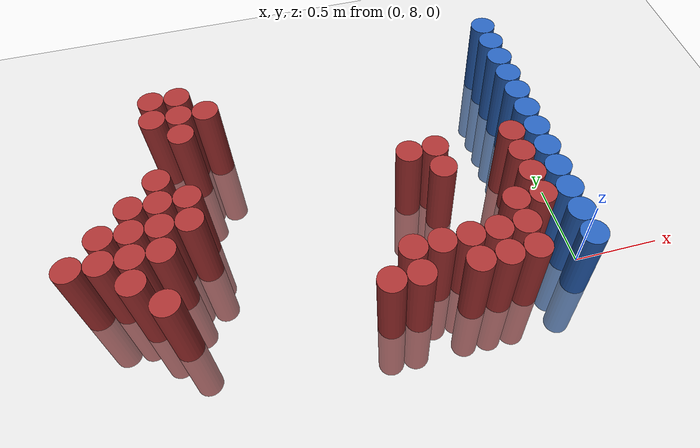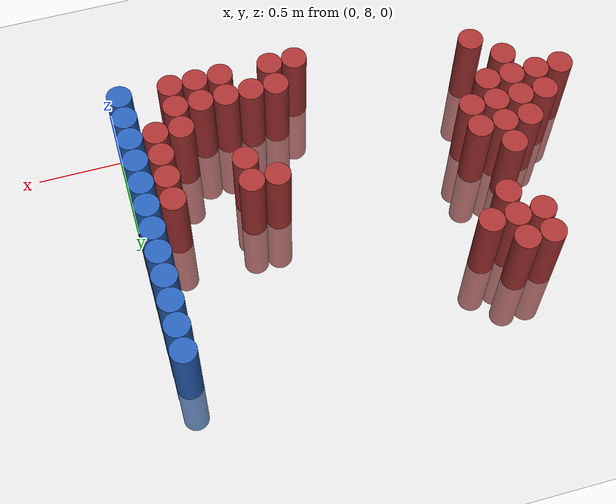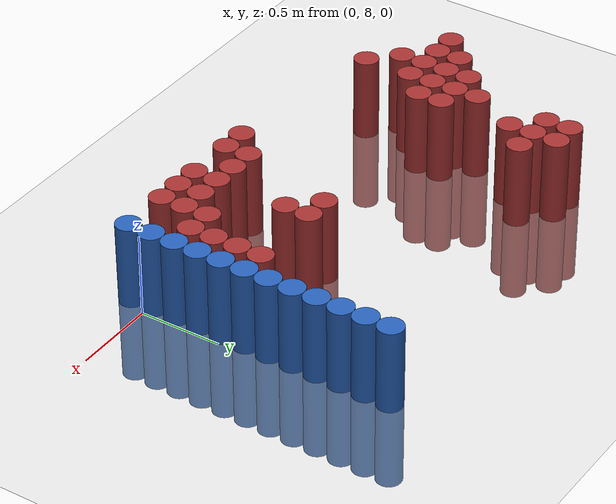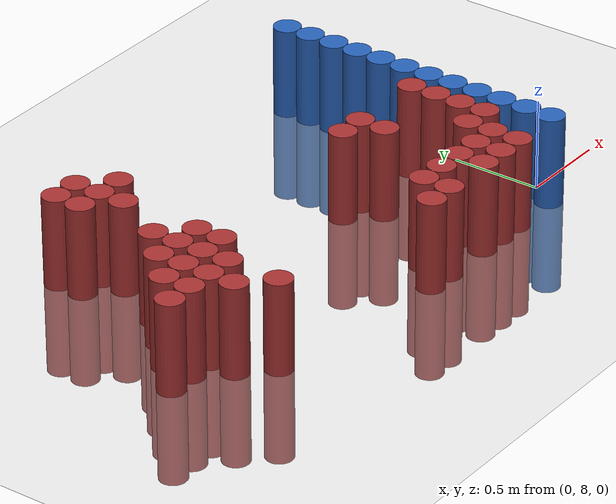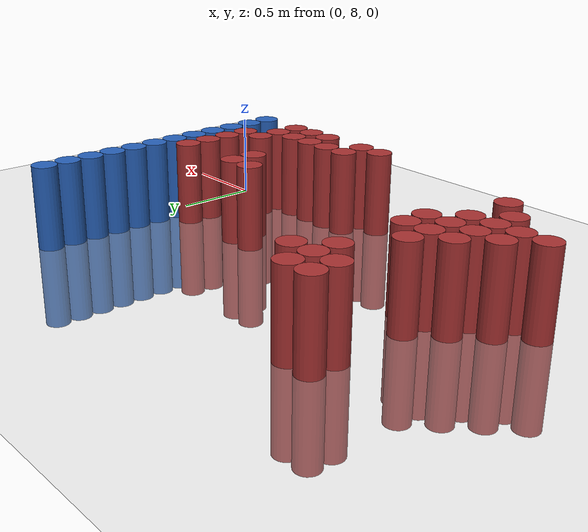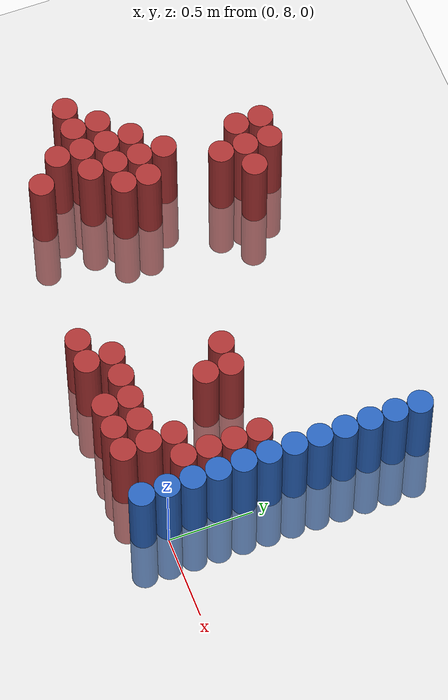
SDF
<sdf version="1.6">
 <world name="default">
  <model name="ground_plane">
   <static>1</static>
   <link name="link">
    <collision name="collision">
     <geometry><plane><normal>0 0 1</normal><size>100 100</size></plane></geometry>
     <surface><friction><ode><mu>100</mu><mu2>50</mu2></ode></friction></surface>
    </collision>
    <visual name="visual">
     <cast_shadows>0</cast_shadows>
     <geometry><plane><normal>0 0 1</normal><size>100 100</size></plane></geometry>
     <material>
      <script><uri>file://media/materials/scripts/gazebo.material</uri><name>Gazebo/Grey</name></script>
     </material>
    </visual>
   </link>
  </model>
  <model name="unit_cylinder_229">
   <static>1</static>
   <pose>-2.625000 8.325000 0.000000 0.000000 0.000000 0.000000</pose>
   <link name="link">
    <inertial>
     <mass>1</mass>
     <inertia><ixx>0.145833</ixx><ixy>0</ixy><ixz>0</ixz><iyy>0.145833</iyy><iyz>0</iyz><izz>0.125</izz></inertia>
    </inertial>
    <collision name="collision">
     <geometry><cylinder><radius>0.075000</radius><length>1</length></cylinder></geometry>
    </collision>
    <visual name="visual">
     <geometry><cylinder><radius>0.075000</radius><length>1</length></cylinder></geometry>
     <material>
      <ambient>0.648000 0.192000 0.192000 1</ambient>
      <diffuse>0.648000 0.192000 0.192000 1</diffuse>
     </material>
     <material>
      <script><name>Gazebo/Grey</name><uri>file://media/materials/scripts/gazebo.material</uri></script>
     </material>
    </visual>
   </link>
  </model>
  <model name="unit_cylinder_237">
   <static>1</static>
   <pose>-2.475000 8.325000 0.000000 0.000000 0.000000 0.000000</pose>
   <link name="link">
    <inertial>
     <mass>1</mass>
     <inertia><ixx>0.145833</ixx><ixy>0</ixy><ixz>0</ixz><iyy>0.145833</iyy><iyz>0</iyz><izz>0.125</izz></inertia>
    </inertial>
    <collision name="collision">
     <geometry><cylinder><radius>0.075000</radius><length>1</length></cylinder></geometry>
    </collision>
    <visual name="visual">
     <geometry><cylinder><radius>0.075000</radius><length>1</length></cylinder></geometry>
     <material>
      <ambient>0.648000 0.192000 0.192000 1</ambient>
      <diffuse>0.648000 0.192000 0.192000 1</diffuse>
     </material>
     <material>
      <script><name>Gazebo/Grey</name><uri>file://media/materials/scripts/gazebo.material</uri></script>
     </material>
    </visual>
   </link>
  </model>
  <model name="unit_cylinder_238">
   <static>1</static>
   <pose>-2.475000 8.475000 0.000000 0.000000 0.000000 0.000000</pose>
   <link name="link">
    <inertial>
     <mass>1</mass>
     <inertia><ixx>0.145833</ixx><ixy>0</ixy><ixz>0</ixz><iyy>0.145833</iyy><iyz>0</iyz><izz>0.125</izz></inertia>
    </inertial>
    <collision name="collision">
     <geometry><cylinder><radius>0.075000</radius><length>1</length></cylinder></geometry>
    </collision>
    <visual name="visual">
     <geometry><cylinder><radius>0.075000</radius><length>1</length></cylinder></geometry>
     <material>
      <ambient>0.648000 0.192000 0.192000 1</ambient>
      <diffuse>0.648000 0.192000 0.192000 1</diffuse>
     </material>
     <material>
      <script><name>Gazebo/Grey</name><uri>file://media/materials/scripts/gazebo.material</uri></script>
     </material>
    </visual>
   </link>
  </model>
  <model name="unit_cylinder_244">
   <static>1</static>
   <pose>-2.325000 8.175000 0.000000 0.000000 0.000000 0.000000</pose>
   <link name="link">
    <inertial>
     <mass>1</mass>
     <inertia><ixx>0.145833</ixx><ixy>0</ixy><ixz>0</ixz><iyy>0.145833</iyy><iyz>0</iyz><izz>0.125</izz></inertia>
    </inertial>
    <collision name="collision">
     <geometry><cylinder><radius>0.075000</radius><length>1</length></cylinder></geometry>
    </collision>
    <visual name="visual">
     <geometry><cylinder><radius>0.075000</radius><length>1</length></cylinder></geometry>
     <material>
      <ambient>0.648000 0.192000 0.192000 1</ambient>
      <diffuse>0.648000 0.192000 0.192000 1</diffuse>
     </material>
     <material>
      <script><name>Gazebo/Grey</name><uri>file://media/materials/scripts/gazebo.material</uri></script>
     </material>
    </visual>
   </link>
  </model>
  <model name="unit_cylinder_245">
   <static>1</static>
   <pose>-2.325000 8.325000 0.000000 0.000000 0.000000 0.000000</pose>
   <link name="link">
    <inertial>
     <mass>1</mass>
     <inertia><ixx>0.145833</ixx><ixy>0</ixy><ixz>0</ixz><iyy>0.145833</iyy><iyz>0</iyz><izz>0.125</izz></inertia>
    </inertial>
    <collision name="collision">
     <geometry><cylinder><radius>0.075000</radius><length>1</length></cylinder></geometry>
    </collision>
    <visual name="visual">
     <geometry><cylinder><radius>0.075000</radius><length>1</length></cylinder></geometry>
     <material>
      <ambient>0.648000 0.192000 0.192000 1</ambient>
      <diffuse>0.648000 0.192000 0.192000 1</diffuse>
     </material>
     <material>
      <script><name>Gazebo/Grey</name><uri>file://media/materials/scripts/gazebo.material</uri></script>
     </material>
    </visual>
   </link>
  </model>
  <model name="unit_cylinder_246">
   <static>1</static>
   <pose>-2.325000 8.475000 0.000000 0.000000 0.000000 0.000000</pose>
   <link name="link">
    <inertial>
     <mass>1</mass>
     <inertia><ixx>0.145833</ixx><ixy>0</ixy><ixz>0</ixz><iyy>0.145833</iyy><iyz>0</iyz><izz>0.125</izz></inertia>
    </inertial>
    <collision name="collision">
     <geometry><cylinder><radius>0.075000</radius><length>1</length></cylinder></geometry>
    </collision>
    <visual name="visual">
     <geometry><cylinder><radius>0.075000</radius><length>1</length></cylinder></geometry>
     <material>
      <ambient>0.648000 0.192000 0.192000 1</ambient>
      <diffuse>0.648000 0.192000 0.192000 1</diffuse>
     </material>
     <material>
      <script><name>Gazebo/Grey</name><uri>file://media/materials/scripts/gazebo.material</uri></script>
     </material>
    </visual>
   </link>
  </model>
  <model name="unit_cylinder_247">
   <static>1</static>
   <pose>-2.325000 8.625000 0.000000 0.000000 0.000000 0.000000</pose>
   <link name="link">
    <inertial>
     <mass>1</mass>
     <inertia><ixx>0.145833</ixx><ixy>0</ixy><ixz>0</ixz><iyy>0.145833</iyy><iyz>0</iyz><izz>0.125</izz></inertia>
    </inertial>
    <collision name="collision">
     <geometry><cylinder><radius>0.075000</radius><length>1</length></cylinder></geometry>
    </collision>
    <visual name="visual">
     <geometry><cylinder><radius>0.075000</radius><length>1</length></cylinder></geometry>
     <material>
      <ambient>0.648000 0.192000 0.192000 1</ambient>
      <diffuse>0.648000 0.192000 0.192000 1</diffuse>
     </material>
     <material>
      <script><name>Gazebo/Grey</name><uri>file://media/materials/scripts/gazebo.material</uri></script>
     </material>
    </visual>
   </link>
  </model>
  <model name="unit_cylinder_251">
   <static>1</static>
   <pose>-2.175000 8.025000 0.000000 0.000000 0.000000 0.000000</pose>
   <link name="link">
    <inertial>
     <mass>1</mass>
     <inertia><ixx>0.145833</ixx><ixy>0</ixy><ixz>0</ixz><iyy>0.145833</iyy><iyz>0</iyz><izz>0.125</izz></inertia>
    </inertial>
    <collision name="collision">
     <geometry><cylinder><radius>0.075000</radius><length>1</length></cylinder></geometry>
    </collision>
    <visual name="visual">
     <geometry><cylinder><radius>0.075000</radius><length>1</length></cylinder></geometry>
     <material>
      <ambient>0.648000 0.192000 0.192000 1</ambient>
      <diffuse>0.648000 0.192000 0.192000 1</diffuse>
     </material>
     <material>
      <script><name>Gazebo/Grey</name><uri>file://media/materials/scripts/gazebo.material</uri></script>
     </material>
    </visual>
   </link>
  </model>
  <model name="unit_cylinder_252">
   <static>1</static>
   <pose>-2.175000 8.325000 0.000000 0.000000 0.000000 0.000000</pose>
   <link name="link">
    <inertial>
     <mass>1</mass>
     <inertia><ixx>0.145833</ixx><ixy>0</ixy><ixz>0</ixz><iyy>0.145833</iyy><iyz>0</iyz><izz>0.125</izz></inertia>
    </inertial>
    <collision name="collision">
     <geometry><cylinder><radius>0.075000</radius><length>1</length></cylinder></geometry>
    </collision>
    <visual name="visual">
     <geometry><cylinder><radius>0.075000</radius><length>1</length></cylinder></geometry>
     <material>
      <ambient>0.648000 0.192000 0.192000 1</ambient>
      <diffuse>0.648000 0.192000 0.192000 1</diffuse>
     </material>
     <material>
      <script><name>Gazebo/Grey</name><uri>file://media/materials/scripts/gazebo.material</uri></script>
     </material>
    </visual>
   </link>
  </model>
  <model name="unit_cylinder_253">
   <static>1</static>
   <pose>-2.175000 8.475000 0.000000 0.000000 0.000000 0.000000</pose>
   <link name="link">
    <inertial>
     <mass>1</mass>
     <inertia><ixx>0.145833</ixx><ixy>0</ixy><ixz>0</ixz><iyy>0.145833</iyy><iyz>0</iyz><izz>0.125</izz></inertia>
    </inertial>
    <collision name="collision">
     <geometry><cylinder><radius>0.075000</radius><length>1</length></cylinder></geometry>
    </collision>
    <visual name="visual">
     <geometry><cylinder><radius>0.075000</radius><length>1</length></cylinder></geometry>
     <material>
      <ambient>0.648000 0.192000 0.192000 1</ambient>
      <diffuse>0.648000 0.192000 0.192000 1</diffuse>
     </material>
     <material>
      <script><name>Gazebo/Grey</name><uri>file://media/materials/scripts/gazebo.material</uri></script>
     </material>
    </visual>
   </link>
  </model>
  <model name="unit_cylinder_254">
   <static>1</static>
   <pose>-2.175000 8.625000 0.000000 0.000000 0.000000 0.000000</pose>
   <link name="link">
    <inertial>
     <mass>1</mass>
     <inertia><ixx>0.145833</ixx><ixy>0</ixy><ixz>0</ixz><iyy>0.145833</iyy><iyz>0</iyz><izz>0.125</izz></inertia>
    </inertial>
    <collision name="collision">
     <geometry><cylinder><radius>0.075000</radius><length>1</length></cylinder></geometry>
    </collision>
    <visual name="visual">
     <geometry><cylinder><radius>0.075000</radius><length>1</length></cylinder></geometry>
     <material>
      <ambient>0.648000 0.192000 0.192000 1</ambient>
      <diffuse>0.648000 0.192000 0.192000 1</diffuse>
     </material>
     <material>
      <script><name>Gazebo/Grey</name><uri>file://media/materials/scripts/gazebo.material</uri></script>
     </material>
    </visual>
   </link>
  </model>
  <model name="unit_cylinder_255">
   <static>1</static>
   <pose>-2.175000 8.775000 0.000000 0.000000 0.000000 0.000000</pose>
   <link name="link">
    <inertial>
     <mass>1</mass>
     <inertia><ixx>0.145833</ixx><ixy>0</ixy><ixz>0</ixz><iyy>0.145833</iyy><iyz>0</iyz><izz>0.125</izz></inertia>
    </inertial>
    <collision name="collision">
     <geometry><cylinder><radius>0.075000</radius><length>1</length></cylinder></geometry>
    </collision>
    <visual name="visual">
     <geometry><cylinder><radius>0.075000</radius><length>1</length></cylinder></geometry>
     <material>
      <ambient>0.648000 0.192000 0.192000 1</ambient>
      <diffuse>0.648000 0.192000 0.192000 1</diffuse>
     </material>
     <material>
      <script><name>Gazebo/Grey</name><uri>file://media/materials/scripts/gazebo.material</uri></script>
     </material>
    </visual>
   </link>
  </model>
  <model name="unit_cylinder_256">
   <static>1</static>
   <pose>-2.175000 9.225000 0.000000 0.000000 0.000000 0.000000</pose>
   <link name="link">
    <inertial>
     <mass>1</mass>
     <inertia><ixx>0.145833</ixx><ixy>0</ixy><ixz>0</ixz><iyy>0.145833</iyy><iyz>0</iyz><izz>0.125</izz></inertia>
    </inertial>
    <collision name="collision">
     <geometry><cylinder><radius>0.075000</radius><length>1</length></cylinder></geometry>
    </collision>
    <visual name="visual">
     <geometry><cylinder><radius>0.075000</radius><length>1</length></cylinder></geometry>
     <material>
      <ambient>0.648000 0.192000 0.192000 1</ambient>
      <diffuse>0.648000 0.192000 0.192000 1</diffuse>
     </material>
     <material>
      <script><name>Gazebo/Grey</name><uri>file://media/materials/scripts/gazebo.material</uri></script>
     </material>
    </visual>
   </link>
  </model>
  <model name="unit_cylinder_257">
   <static>1</static>
   <pose>-2.175000 9.375000 0.000000 0.000000 0.000000 0.000000</pose>
   <link name="link">
    <inertial>
     <mass>1</mass>
     <inertia><ixx>0.145833</ixx><ixy>0</ixy><ixz>0</ixz><iyy>0.145833</iyy><iyz>0</iyz><izz>0.125</izz></inertia>
    </inertial>
    <collision name="collision">
     <geometry><cylinder><radius>0.075000</radius><length>1</length></cylinder></geometry>
    </collision>
    <visual name="visual">
     <geometry><cylinder><radius>0.075000</radius><length>1</length></cylinder></geometry>
     <material>
      <ambient>0.648000 0.192000 0.192000 1</ambient>
      <diffuse>0.648000 0.192000 0.192000 1</diffuse>
     </material>
     <material>
      <script><name>Gazebo/Grey</name><uri>file://media/materials/scripts/gazebo.material</uri></script>
     </material>
    </visual>
   </link>
  </model>
  <model name="unit_cylinder_258">
   <static>1</static>
   <pose>-2.025000 8.475000 0.000000 0.000000 0.000000 0.000000</pose>
   <link name="link">
    <inertial>
     <mass>1</mass>
     <inertia><ixx>0.145833</ixx><ixy>0</ixy><ixz>0</ixz><iyy>0.145833</iyy><iyz>0</iyz><izz>0.125</izz></inertia>
    </inertial>
    <collision name="collision">
     <geometry><cylinder><radius>0.075000</radius><length>1</length></cylinder></geometry>
    </collision>
    <visual name="visual">
     <geometry><cylinder><radius>0.075000</radius><length>1</length></cylinder></geometry>
     <material>
      <ambient>0.648000 0.192000 0.192000 1</ambient>
      <diffuse>0.648000 0.192000 0.192000 1</diffuse>
     </material>
     <material>
      <script><name>Gazebo/Grey</name><uri>file://media/materials/scripts/gazebo.material</uri></script>
     </material>
    </visual>
   </link>
  </model>
  <model name="unit_cylinder_259">
   <static>1</static>
   <pose>-2.025000 8.625000 0.000000 0.000000 0.000000 0.000000</pose>
   <link name="link">
    <inertial>
     <mass>1</mass>
     <inertia><ixx>0.145833</ixx><ixy>0</ixy><ixz>0</ixz><iyy>0.145833</iyy><iyz>0</iyz><izz>0.125</izz></inertia>
    </inertial>
    <collision name="collision">
     <geometry><cylinder><radius>0.075000</radius><length>1</length></cylinder></geometry>
    </collision>
    <visual name="visual">
     <geometry><cylinder><radius>0.075000</radius><length>1</length></cylinder></geometry>
     <material>
      <ambient>0.648000 0.192000 0.192000 1</ambient>
      <diffuse>0.648000 0.192000 0.192000 1</diffuse>
     </material>
     <material>
      <script><name>Gazebo/Grey</name><uri>file://media/materials/scripts/gazebo.material</uri></script>
     </material>
    </visual>
   </link>
  </model>
  <model name="unit_cylinder_260">
   <static>1</static>
   <pose>-2.025000 9.075000 0.000000 0.000000 0.000000 0.000000</pose>
   <link name="link">
    <inertial>
     <mass>1</mass>
     <inertia><ixx>0.145833</ixx><ixy>0</ixy><ixz>0</ixz><iyy>0.145833</iyy><iyz>0</iyz><izz>0.125</izz></inertia>
    </inertial>
    <collision name="collision">
     <geometry><cylinder><radius>0.075000</radius><length>1</length></cylinder></geometry>
    </collision>
    <visual name="visual">
     <geometry><cylinder><radius>0.075000</radius><length>1</length></cylinder></geometry>
     <material>
      <ambient>0.648000 0.192000 0.192000 1</ambient>
      <diffuse>0.648000 0.192000 0.192000 1</diffuse>
     </material>
     <material>
      <script><name>Gazebo/Grey</name><uri>file://media/materials/scripts/gazebo.material</uri></script>
     </material>
    </visual>
   </link>
  </model>
  <model name="unit_cylinder_261">
   <static>1</static>
   <pose>-2.025000 9.225000 0.000000 0.000000 0.000000 0.000000</pose>
   <link name="link">
    <inertial>
     <mass>1</mass>
     <inertia><ixx>0.145833</ixx><ixy>0</ixy><ixz>0</ixz><iyy>0.145833</iyy><iyz>0</iyz><izz>0.125</izz></inertia>
    </inertial>
    <collision name="collision">
     <geometry><cylinder><radius>0.075000</radius><length>1</length></cylinder></geometry>
    </collision>
    <visual name="visual">
     <geometry><cylinder><radius>0.075000</radius><length>1</length></cylinder></geometry>
     <material>
      <ambient>0.648000 0.192000 0.192000 1</ambient>
      <diffuse>0.648000 0.192000 0.192000 1</diffuse>
     </material>
     <material>
      <script><name>Gazebo/Grey</name><uri>file://media/materials/scripts/gazebo.material</uri></script>
     </material>
    </visual>
   </link>
  </model>
  <model name="unit_cylinder_262">
   <static>1</static>
   <pose>-2.025000 9.375000 0.000000 0.000000 0.000000 0.000000</pose>
   <link name="link">
    <inertial>
     <mass>1</mass>
     <inertia><ixx>0.145833</ixx><ixy>0</ixy><ixz>0</ixz><iyy>0.145833</iyy><iyz>0</iyz><izz>0.125</izz></inertia>
    </inertial>
    <collision name="collision">
     <geometry><cylinder><radius>0.075000</radius><length>1</length></cylinder></geometry>
    </collision>
    <visual name="visual">
     <geometry><cylinder><radius>0.075000</radius><length>1</length></cylinder></geometry>
     <material>
      <ambient>0.648000 0.192000 0.192000 1</ambient>
      <diffuse>0.648000 0.192000 0.192000 1</diffuse>
     </material>
     <material>
      <script><name>Gazebo/Grey</name><uri>file://media/materials/scripts/gazebo.material</uri></script>
     </material>
    </visual>
   </link>
  </model>
  <model name="unit_cylinder_263">
   <static>1</static>
   <pose>-1.875000 9.225000 0.000000 0.000000 0.000000 0.000000</pose>
   <link name="link">
    <inertial>
     <mass>1</mass>
     <inertia><ixx>0.145833</ixx><ixy>0</ixy><ixz>0</ixz><iyy>0.145833</iyy><iyz>0</iyz><izz>0.125</izz></inertia>
    </inertial>
    <collision name="collision">
     <geometry><cylinder><radius>0.075000</radius><length>1</length></cylinder></geometry>
    </collision>
    <visual name="visual">
     <geometry><cylinder><radius>0.075000</radius><length>1</length></cylinder></geometry>
     <material>
      <ambient>0.648000 0.192000 0.192000 1</ambient>
      <diffuse>0.648000 0.192000 0.192000 1</diffuse>
     </material>
     <material>
      <script><name>Gazebo/Grey</name><uri>file://media/materials/scripts/gazebo.material</uri></script>
     </material>
    </visual>
   </link>
  </model>
  <model name="unit_cylinder_269">
   <static>1</static>
   <pose>-1.125000 7.875000 0.000000 0.000000 0.000000 0.000000</pose>
   <link name="link">
    <inertial>
     <mass>1</mass>
     <inertia><ixx>0.145833</ixx><ixy>0</ixy><ixz>0</ixz><iyy>0.145833</iyy><iyz>0</iyz><izz>0.125</izz></inertia>
    </inertial>
    <collision name="collision">
     <geometry><cylinder><radius>0.075000</radius><length>1</length></cylinder></geometry>
    </collision>
    <visual name="visual">
     <geometry><cylinder><radius>0.075000</radius><length>1</length></cylinder></geometry>
     <material>
      <ambient>0.648000 0.192000 0.192000 1</ambient>
      <diffuse>0.648000 0.192000 0.192000 1</diffuse>
     </material>
     <material>
      <script><name>Gazebo/Grey</name><uri>file://media/materials/scripts/gazebo.material</uri></script>
     </material>
    </visual>
   </link>
  </model>
  <model name="unit_cylinder_273">
   <static>1</static>
   <pose>-0.975000 7.875000 0.000000 0.000000 0.000000 0.000000</pose>
   <link name="link">
    <inertial>
     <mass>1</mass>
     <inertia><ixx>0.145833</ixx><ixy>0</ixy><ixz>0</ixz><iyy>0.145833</iyy><iyz>0</iyz><izz>0.125</izz></inertia>
    </inertial>
    <collision name="collision">
     <geometry><cylinder><radius>0.075000</radius><length>1</length></cylinder></geometry>
    </collision>
    <visual name="visual">
     <geometry><cylinder><radius>0.075000</radius><length>1</length></cylinder></geometry>
     <material>
      <ambient>0.648000 0.192000 0.192000 1</ambient>
      <diffuse>0.648000 0.192000 0.192000 1</diffuse>
     </material>
     <material>
      <script><name>Gazebo/Grey</name><uri>file://media/materials/scripts/gazebo.material</uri></script>
     </material>
    </visual>
   </link>
  </model>
  <model name="unit_cylinder_274">
   <static>1</static>
   <pose>-0.975000 8.025000 0.000000 0.000000 0.000000 0.000000</pose>
   <link name="link">
    <inertial>
     <mass>1</mass>
     <inertia><ixx>0.145833</ixx><ixy>0</ixy><ixz>0</ixz><iyy>0.145833</iyy><iyz>0</iyz><izz>0.125</izz></inertia>
    </inertial>
    <collision name="collision">
     <geometry><cylinder><radius>0.075000</radius><length>1</length></cylinder></geometry>
    </collision>
    <visual name="visual">
     <geometry><cylinder><radius>0.075000</radius><length>1</length></cylinder></geometry>
     <material>
      <ambient>0.648000 0.192000 0.192000 1</ambient>
      <diffuse>0.648000 0.192000 0.192000 1</diffuse>
     </material>
     <material>
      <script><name>Gazebo/Grey</name><uri>file://media/materials/scripts/gazebo.material</uri></script>
     </material>
    </visual>
   </link>
  </model>
  <model name="unit_cylinder_279">
   <static>1</static>
   <pose>-0.825000 8.025000 0.000000 0.000000 0.000000 0.000000</pose>
   <link name="link">
    <inertial>
     <mass>1</mass>
     <inertia><ixx>0.145833</ixx><ixy>0</ixy><ixz>0</ixz><iyy>0.145833</iyy><iyz>0</iyz><izz>0.125</izz></inertia>
    </inertial>
    <collision name="collision">
     <geometry><cylinder><radius>0.075000</radius><length>1</length></cylinder></geometry>
    </collision>
    <visual name="visual">
     <geometry><cylinder><radius>0.075000</radius><length>1</length></cylinder></geometry>
     <material>
      <ambient>0.648000 0.192000 0.192000 1</ambient>
      <diffuse>0.648000 0.192000 0.192000 1</diffuse>
     </material>
     <material>
      <script><name>Gazebo/Grey</name><uri>file://media/materials/scripts/gazebo.material</uri></script>
     </material>
    </visual>
   </link>
  </model>
  <model name="unit_cylinder_280">
   <static>1</static>
   <pose>-0.825000 8.625000 0.000000 0.000000 0.000000 0.000000</pose>
   <link name="link">
    <inertial>
     <mass>1</mass>
     <inertia><ixx>0.145833</ixx><ixy>0</ixy><ixz>0</ixz><iyy>0.145833</iyy><iyz>0</iyz><izz>0.125</izz></inertia>
    </inertial>
    <collision name="collision">
     <geometry><cylinder><radius>0.075000</radius><length>1</length></cylinder></geometry>
    </collision>
    <visual name="visual">
     <geometry><cylinder><radius>0.075000</radius><length>1</length></cylinder></geometry>
     <material>
      <ambient>0.648000 0.192000 0.192000 1</ambient>
      <diffuse>0.648000 0.192000 0.192000 1</diffuse>
     </material>
     <material>
      <script><name>Gazebo/Grey</name><uri>file://media/materials/scripts/gazebo.material</uri></script>
     </material>
    </visual>
   </link>
  </model>
  <model name="unit_cylinder_284">
   <static>1</static>
   <pose>-0.675000 7.875000 0.000000 0.000000 0.000000 0.000000</pose>
   <link name="link">
    <inertial>
     <mass>1</mass>
     <inertia><ixx>0.145833</ixx><ixy>0</ixy><ixz>0</ixz><iyy>0.145833</iyy><iyz>0</iyz><izz>0.125</izz></inertia>
    </inertial>
    <collision name="collision">
     <geometry><cylinder><radius>0.075000</radius><length>1</length></cylinder></geometry>
    </collision>
    <visual name="visual">
     <geometry><cylinder><radius>0.075000</radius><length>1</length></cylinder></geometry>
     <material>
      <ambient>0.648000 0.192000 0.192000 1</ambient>
      <diffuse>0.648000 0.192000 0.192000 1</diffuse>
     </material>
     <material>
      <script><name>Gazebo/Grey</name><uri>file://media/materials/scripts/gazebo.material</uri></script>
     </material>
    </visual>
   </link>
  </model>
  <model name="unit_cylinder_285">
   <static>1</static>
   <pose>-0.675000 8.025000 0.000000 0.000000 0.000000 0.000000</pose>
   <link name="link">
    <inertial>
     <mass>1</mass>
     <inertia><ixx>0.145833</ixx><ixy>0</ixy><ixz>0</ixz><iyy>0.145833</iyy><iyz>0</iyz><izz>0.125</izz></inertia>
    </inertial>
    <collision name="collision">
     <geometry><cylinder><radius>0.075000</radius><length>1</length></cylinder></geometry>
    </collision>
    <visual name="visual">
     <geometry><cylinder><radius>0.075000</radius><length>1</length></cylinder></geometry>
     <material>
      <ambient>0.648000 0.192000 0.192000 1</ambient>
      <diffuse>0.648000 0.192000 0.192000 1</diffuse>
     </material>
     <material>
      <script><name>Gazebo/Grey</name><uri>file://media/materials/scripts/gazebo.material</uri></script>
     </material>
    </visual>
   </link>
  </model>
  <model name="unit_cylinder_286">
   <static>1</static>
   <pose>-0.675000 8.475000 0.000000 0.000000 0.000000 0.000000</pose>
   <link name="link">
    <inertial>
     <mass>1</mass>
     <inertia><ixx>0.145833</ixx><ixy>0</ixy><ixz>0</ixz><iyy>0.145833</iyy><iyz>0</iyz><izz>0.125</izz></inertia>
    </inertial>
    <collision name="collision">
     <geometry><cylinder><radius>0.075000</radius><length>1</length></cylinder></geometry>
    </collision>
    <visual name="visual">
     <geometry><cylinder><radius>0.075000</radius><length>1</length></cylinder></geometry>
     <material>
      <ambient>0.648000 0.192000 0.192000 1</ambient>
      <diffuse>0.648000 0.192000 0.192000 1</diffuse>
     </material>
     <material>
      <script><name>Gazebo/Grey</name><uri>file://media/materials/scripts/gazebo.material</uri></script>
     </material>
    </visual>
   </link>
  </model>
  <model name="unit_cylinder_287">
   <static>1</static>
   <pose>-0.675000 8.625000 0.000000 0.000000 0.000000 0.000000</pose>
   <link name="link">
    <inertial>
     <mass>1</mass>
     <inertia><ixx>0.145833</ixx><ixy>0</ixy><ixz>0</ixz><iyy>0.145833</iyy><iyz>0</iyz><izz>0.125</izz></inertia>
    </inertial>
    <collision name="collision">
     <geometry><cylinder><radius>0.075000</radius><length>1</length></cylinder></geometry>
    </collision>
    <visual name="visual">
     <geometry><cylinder><radius>0.075000</radius><length>1</length></cylinder></geometry>
     <material>
      <ambient>0.648000 0.192000 0.192000 1</ambient>
      <diffuse>0.648000 0.192000 0.192000 1</diffuse>
     </material>
     <material>
      <script><name>Gazebo/Grey</name><uri>file://media/materials/scripts/gazebo.material</uri></script>
     </material>
    </visual>
   </link>
  </model>
  <model name="unit_cylinder_291">
   <static>1</static>
   <pose>-0.525000 7.875000 0.000000 0.000000 0.000000 0.000000</pose>
   <link name="link">
    <inertial>
     <mass>1</mass>
     <inertia><ixx>0.145833</ixx><ixy>0</ixy><ixz>0</ixz><iyy>0.145833</iyy><iyz>0</iyz><izz>0.125</izz></inertia>
    </inertial>
    <collision name="collision">
     <geometry><cylinder><radius>0.075000</radius><length>1</length></cylinder></geometry>
    </collision>
    <visual name="visual">
     <geometry><cylinder><radius>0.075000</radius><length>1</length></cylinder></geometry>
     <material>
      <ambient>0.648000 0.192000 0.192000 1</ambient>
      <diffuse>0.648000 0.192000 0.192000 1</diffuse>
     </material>
     <material>
      <script><name>Gazebo/Grey</name><uri>file://media/materials/scripts/gazebo.material</uri></script>
     </material>
    </visual>
   </link>
  </model>
  <model name="unit_cylinder_292">
   <static>1</static>
   <pose>-0.525000 8.025000 0.000000 0.000000 0.000000 0.000000</pose>
   <link name="link">
    <inertial>
     <mass>1</mass>
     <inertia><ixx>0.145833</ixx><ixy>0</ixy><ixz>0</ixz><iyy>0.145833</iyy><iyz>0</iyz><izz>0.125</izz></inertia>
    </inertial>
    <collision name="collision">
     <geometry><cylinder><radius>0.075000</radius><length>1</length></cylinder></geometry>
    </collision>
    <visual name="visual">
     <geometry><cylinder><radius>0.075000</radius><length>1</length></cylinder></geometry>
     <material>
      <ambient>0.648000 0.192000 0.192000 1</ambient>
      <diffuse>0.648000 0.192000 0.192000 1</diffuse>
     </material>
     <material>
      <script><name>Gazebo/Grey</name><uri>file://media/materials/scripts/gazebo.material</uri></script>
     </material>
    </visual>
   </link>
  </model>
  <model name="unit_cylinder_301">
   <static>1</static>
   <pose>-0.375000 7.875000 0.000000 0.000000 0.000000 0.000000</pose>
   <link name="link">
    <inertial>
     <mass>1</mass>
     <inertia><ixx>0.145833</ixx><ixy>0</ixy><ixz>0</ixz><iyy>0.145833</iyy><iyz>0</iyz><izz>0.125</izz></inertia>
    </inertial>
    <collision name="collision">
     <geometry><cylinder><radius>0.075000</radius><length>1</length></cylinder></geometry>
    </collision>
    <visual name="visual">
     <geometry><cylinder><radius>0.075000</radius><length>1</length></cylinder></geometry>
     <material>
      <ambient>0.648000 0.192000 0.192000 1</ambient>
      <diffuse>0.648000 0.192000 0.192000 1</diffuse>
     </material>
     <material>
      <script><name>Gazebo/Grey</name><uri>file://media/materials/scripts/gazebo.material</uri></script>
     </material>
    </visual>
   </link>
  </model>
  <model name="unit_cylinder_302">
   <static>1</static>
   <pose>-0.375000 8.025000 0.000000 0.000000 0.000000 0.000000</pose>
   <link name="link">
    <inertial>
     <mass>1</mass>
     <inertia><ixx>0.145833</ixx><ixy>0</ixy><ixz>0</ixz><iyy>0.145833</iyy><iyz>0</iyz><izz>0.125</izz></inertia>
    </inertial>
    <collision name="collision">
     <geometry><cylinder><radius>0.075000</radius><length>1</length></cylinder></geometry>
    </collision>
    <visual name="visual">
     <geometry><cylinder><radius>0.075000</radius><length>1</length></cylinder></geometry>
     <material>
      <ambient>0.648000 0.192000 0.192000 1</ambient>
      <diffuse>0.648000 0.192000 0.192000 1</diffuse>
     </material>
     <material>
      <script><name>Gazebo/Grey</name><uri>file://media/materials/scripts/gazebo.material</uri></script>
     </material>
    </visual>
   </link>
  </model>
  <model name="unit_cylinder_303">
   <static>1</static>
   <pose>-0.375000 8.175000 0.000000 0.000000 0.000000 0.000000</pose>
   <link name="link">
    <inertial>
     <mass>1</mass>
     <inertia><ixx>0.145833</ixx><ixy>0</ixy><ixz>0</ixz><iyy>0.145833</iyy><iyz>0</iyz><izz>0.125</izz></inertia>
    </inertial>
    <collision name="collision">
     <geometry><cylinder><radius>0.075000</radius><length>1</length></cylinder></geometry>
    </collision>
    <visual name="visual">
     <geometry><cylinder><radius>0.075000</radius><length>1</length></cylinder></geometry>
     <material>
      <ambient>0.648000 0.192000 0.192000 1</ambient>
      <diffuse>0.648000 0.192000 0.192000 1</diffuse>
     </material>
     <material>
      <script><name>Gazebo/Grey</name><uri>file://media/materials/scripts/gazebo.material</uri></script>
     </material>
    </visual>
   </link>
  </model>
  <model name="unit_cylinder_314">
   <static>1</static>
   <pose>-0.225000 8.175000 0.000000 0.000000 0.000000 0.000000</pose>
   <link name="link">
    <inertial>
     <mass>1</mass>
     <inertia><ixx>0.145833</ixx><ixy>0</ixy><ixz>0</ixz><iyy>0.145833</iyy><iyz>0</iyz><izz>0.125</izz></inertia>
    </inertial>
    <collision name="collision">
     <geometry><cylinder><radius>0.075000</radius><length>1</length></cylinder></geometry>
    </collision>
    <visual name="visual">
     <geometry><cylinder><radius>0.075000</radius><length>1</length></cylinder></geometry>
     <material>
      <ambient>0.648000 0.192000 0.192000 1</ambient>
      <diffuse>0.648000 0.192000 0.192000 1</diffuse>
     </material>
     <material>
      <script><name>Gazebo/Grey</name><uri>file://media/materials/scripts/gazebo.material</uri></script>
     </material>
    </visual>
   </link>
  </model>
  <model name="unit_cylinder_315">
   <static>1</static>
   <pose>-0.225000 8.325000 0.000000 0.000000 0.000000 0.000000</pose>
   <link name="link">
    <inertial>
     <mass>1</mass>
     <inertia><ixx>0.145833</ixx><ixy>0</ixy><ixz>0</ixz><iyy>0.145833</iyy><iyz>0</iyz><izz>0.125</izz></inertia>
    </inertial>
    <collision name="collision">
     <geometry><cylinder><radius>0.075000</radius><length>1</length></cylinder></geometry>
    </collision>
    <visual name="visual">
     <geometry><cylinder><radius>0.075000</radius><length>1</length></cylinder></geometry>
     <material>
      <ambient>0.648000 0.192000 0.192000 1</ambient>
      <diffuse>0.648000 0.192000 0.192000 1</diffuse>
     </material>
     <material>
      <script><name>Gazebo/Grey</name><uri>file://media/materials/scripts/gazebo.material</uri></script>
     </material>
    </visual>
   </link>
  </model>
  <model name="unit_cylinder_316">
   <static>1</static>
   <pose>-0.225000 8.475000 0.000000 0.000000 0.000000 0.000000</pose>
   <link name="link">
    <inertial>
     <mass>1</mass>
     <inertia><ixx>0.145833</ixx><ixy>0</ixy><ixz>0</ixz><iyy>0.145833</iyy><iyz>0</iyz><izz>0.125</izz></inertia>
    </inertial>
    <collision name="collision">
     <geometry><cylinder><radius>0.075000</radius><length>1</length></cylinder></geometry>
    </collision>
    <visual name="visual">
     <geometry><cylinder><radius>0.075000</radius><length>1</length></cylinder></geometry>
     <material>
      <ambient>0.648000 0.192000 0.192000 1</ambient>
      <diffuse>0.648000 0.192000 0.192000 1</diffuse>
     </material>
     <material>
      <script><name>Gazebo/Grey</name><uri>file://media/materials/scripts/gazebo.material</uri></script>
     </material>
    </visual>
   </link>
  </model>
  <model name="unit_cylinder_317">
   <static>1</static>
   <pose>-0.225000 8.625000 0.000000 0.000000 0.000000 0.000000</pose>
   <link name="link">
    <inertial>
     <mass>1</mass>
     <inertia><ixx>0.145833</ixx><ixy>0</ixy><ixz>0</ixz><iyy>0.145833</iyy><iyz>0</iyz><izz>0.125</izz></inertia>
    </inertial>
    <collision name="collision">
     <geometry><cylinder><radius>0.075000</radius><length>1</length></cylinder></geometry>
    </collision>
    <visual name="visual">
     <geometry><cylinder><radius>0.075000</radius><length>1</length></cylinder></geometry>
     <material>
      <ambient>0.648000 0.192000 0.192000 1</ambient>
      <diffuse>0.648000 0.192000 0.192000 1</diffuse>
     </material>
     <material>
      <script><name>Gazebo/Grey</name><uri>file://media/materials/scripts/gazebo.material</uri></script>
     </material>
    </visual>
   </link>
  </model>
  <model name="unit_cylinder_336">
   <static>1</static>
   <pose>-0.075000 7.875000 0.000000 0.000000 0.000000 0.000000</pose>
   <link name="link">
    <inertial>
     <mass>1</mass>
     <inertia><ixx>0.145833</ixx><ixy>0</ixy><ixz>0</ixz><iyy>0.145833</iyy><iyz>0</iyz><izz>0.125</izz></inertia>
    </inertial>
    <collision name="collision">
     <geometry><cylinder><radius>0.075000</radius><length>1</length></cylinder></geometry>
    </collision>
    <visual name="visual">
     <geometry><cylinder><radius>0.075000</radius><length>1</length></cylinder></geometry>
     <material>
      <ambient>0.152000 0.379000 0.720000 1</ambient>
      <diffuse>0.152000 0.379000 0.720000 1</diffuse>
     </material>
     <material>
      <script><name>Gazebo/Grey</name><uri>file://media/materials/scripts/gazebo.material</uri></script>
     </material>
    </visual>
   </link>
  </model>
  <model name="unit_cylinder_337">
   <static>1</static>
   <pose>-0.075000 8.025000 0.000000 0.000000 0.000000 0.000000</pose>
   <link name="link">
    <inertial>
     <mass>1</mass>
     <inertia><ixx>0.145833</ixx><ixy>0</ixy><ixz>0</ixz><iyy>0.145833</iyy><iyz>0</iyz><izz>0.125</izz></inertia>
    </inertial>
    <collision name="collision">
     <geometry><cylinder><radius>0.075000</radius><length>1</length></cylinder></geometry>
    </collision>
    <visual name="visual">
     <geometry><cylinder><radius>0.075000</radius><length>1</length></cylinder></geometry>
     <material>
      <ambient>0.152000 0.379000 0.720000 1</ambient>
      <diffuse>0.152000 0.379000 0.720000 1</diffuse>
     </material>
     <material>
      <script><name>Gazebo/Grey</name><uri>file://media/materials/scripts/gazebo.material</uri></script>
     </material>
    </visual>
   </link>
  </model>
  <model name="unit_cylinder_338">
   <static>1</static>
   <pose>-0.075000 8.175000 0.000000 0.000000 0.000000 0.000000</pose>
   <link name="link">
    <inertial>
     <mass>1</mass>
     <inertia><ixx>0.145833</ixx><ixy>0</ixy><ixz>0</ixz><iyy>0.145833</iyy><iyz>0</iyz><izz>0.125</izz></inertia>
    </inertial>
    <collision name="collision">
     <geometry><cylinder><radius>0.075000</radius><length>1</length></cylinder></geometry>
    </collision>
    <visual name="visual">
     <geometry><cylinder><radius>0.075000</radius><length>1</length></cylinder></geometry>
     <material>
      <ambient>0.152000 0.379000 0.720000 1</ambient>
      <diffuse>0.152000 0.379000 0.720000 1</diffuse>
     </material>
     <material>
      <script><name>Gazebo/Grey</name><uri>file://media/materials/scripts/gazebo.material</uri></script>
     </material>
    </visual>
   </link>
  </model>
  <model name="unit_cylinder_339">
   <static>1</static>
   <pose>-0.075000 8.325000 0.000000 0.000000 0.000000 0.000000</pose>
   <link name="link">
    <inertial>
     <mass>1</mass>
     <inertia><ixx>0.145833</ixx><ixy>0</ixy><ixz>0</ixz><iyy>0.145833</iyy><iyz>0</iyz><izz>0.125</izz></inertia>
    </inertial>
    <collision name="collision">
     <geometry><cylinder><radius>0.075000</radius><length>1</length></cylinder></geometry>
    </collision>
    <visual name="visual">
     <geometry><cylinder><radius>0.075000</radius><length>1</length></cylinder></geometry>
     <material>
      <ambient>0.152000 0.379000 0.720000 1</ambient>
      <diffuse>0.152000 0.379000 0.720000 1</diffuse>
     </material>
     <material>
      <script><name>Gazebo/Grey</name><uri>file://media/materials/scripts/gazebo.material</uri></script>
     </material>
    </visual>
   </link>
  </model>
  <model name="unit_cylinder_340">
   <static>1</static>
   <pose>-0.075000 8.475000 0.000000 0.000000 0.000000 0.000000</pose>
   <link name="link">
    <inertial>
     <mass>1</mass>
     <inertia><ixx>0.145833</ixx><ixy>0</ixy><ixz>0</ixz><iyy>0.145833</iyy><iyz>0</iyz><izz>0.125</izz></inertia>
    </inertial>
    <collision name="collision">
     <geometry><cylinder><radius>0.075000</radius><length>1</length></cylinder></geometry>
    </collision>
    <visual name="visual">
     <geometry><cylinder><radius>0.075000</radius><length>1</length></cylinder></geometry>
     <material>
      <ambient>0.152000 0.379000 0.720000 1</ambient>
      <diffuse>0.152000 0.379000 0.720000 1</diffuse>
     </material>
     <material>
      <script><name>Gazebo/Grey</name><uri>file://media/materials/scripts/gazebo.material</uri></script>
     </material>
    </visual>
   </link>
  </model>
  <model name="unit_cylinder_341">
   <static>1</static>
   <pose>-0.075000 8.625000 0.000000 0.000000 0.000000 0.000000</pose>
   <link name="link">
    <inertial>
     <mass>1</mass>
     <inertia><ixx>0.145833</ixx><ixy>0</ixy><ixz>0</ixz><iyy>0.145833</iyy><iyz>0</iyz><izz>0.125</izz></inertia>
    </inertial>
    <collision name="collision">
     <geometry><cylinder><radius>0.075000</radius><length>1</length></cylinder></geometry>
    </collision>
    <visual name="visual">
     <geometry><cylinder><radius>0.075000</radius><length>1</length></cylinder></geometry>
     <material>
      <ambient>0.152000 0.379000 0.720000 1</ambient>
      <diffuse>0.152000 0.379000 0.720000 1</diffuse>
     </material>
     <material>
      <script><name>Gazebo/Grey</name><uri>file://media/materials/scripts/gazebo.material</uri></script>
     </material>
    </visual>
   </link>
  </model>
  <model name="unit_cylinder_342">
   <static>1</static>
   <pose>-0.075000 8.775000 0.000000 0.000000 0.000000 0.000000</pose>
   <link name="link">
    <inertial>
     <mass>1</mass>
     <inertia><ixx>0.145833</ixx><ixy>0</ixy><ixz>0</ixz><iyy>0.145833</iyy><iyz>0</iyz><izz>0.125</izz></inertia>
    </inertial>
    <collision name="collision">
     <geometry><cylinder><radius>0.075000</radius><length>1</length></cylinder></geometry>
    </collision>
    <visual name="visual">
     <geometry><cylinder><radius>0.075000</radius><length>1</length></cylinder></geometry>
     <material>
      <ambient>0.152000 0.379000 0.720000 1</ambient>
      <diffuse>0.152000 0.379000 0.720000 1</diffuse>
     </material>
     <material>
      <script><name>Gazebo/Grey</name><uri>file://media/materials/scripts/gazebo.material</uri></script>
     </material>
    </visual>
   </link>
  </model>
  <model name="unit_cylinder_343">
   <static>1</static>
   <pose>-0.075000 8.925000 0.000000 0.000000 0.000000 0.000000</pose>
   <link name="link">
    <inertial>
     <mass>1</mass>
     <inertia><ixx>0.145833</ixx><ixy>0</ixy><ixz>0</ixz><iyy>0.145833</iyy><iyz>0</iyz><izz>0.125</izz></inertia>
    </inertial>
    <collision name="collision">
     <geometry><cylinder><radius>0.075000</radius><length>1</length></cylinder></geometry>
    </collision>
    <visual name="visual">
     <geometry><cylinder><radius>0.075000</radius><length>1</length></cylinder></geometry>
     <material>
      <ambient>0.152000 0.379000 0.720000 1</ambient>
      <diffuse>0.152000 0.379000 0.720000 1</diffuse>
     </material>
     <material>
      <script><name>Gazebo/Grey</name><uri>file://media/materials/scripts/gazebo.material</uri></script>
     </material>
    </visual>
   </link>
  </model>
  <model name="unit_cylinder_344">
   <static>1</static>
   <pose>-0.075000 9.075000 0.000000 0.000000 0.000000 0.000000</pose>
   <link name="link">
    <inertial>
     <mass>1</mass>
     <inertia><ixx>0.145833</ixx><ixy>0</ixy><ixz>0</ixz><iyy>0.145833</iyy><iyz>0</iyz><izz>0.125</izz></inertia>
    </inertial>
    <collision name="collision">
     <geometry><cylinder><radius>0.075000</radius><length>1</length></cylinder></geometry>
    </collision>
    <visual name="visual">
     <geometry><cylinder><radius>0.075000</radius><length>1</length></cylinder></geometry>
     <material>
      <ambient>0.152000 0.379000 0.720000 1</ambient>
      <diffuse>0.152000 0.379000 0.720000 1</diffuse>
     </material>
     <material>
      <script><name>Gazebo/Grey</name><uri>file://media/materials/scripts/gazebo.material</uri></script>
     </material>
    </visual>
   </link>
  </model>
  <model name="unit_cylinder_345">
   <static>1</static>
   <pose>-0.075000 9.225000 0.000000 0.000000 0.000000 0.000000</pose>
   <link name="link">
    <inertial>
     <mass>1</mass>
     <inertia><ixx>0.145833</ixx><ixy>0</ixy><ixz>0</ixz><iyy>0.145833</iyy><iyz>0</iyz><izz>0.125</izz></inertia>
    </inertial>
    <collision name="collision">
     <geometry><cylinder><radius>0.075000</radius><length>1</length></cylinder></geometry>
    </collision>
    <visual name="visual">
     <geometry><cylinder><radius>0.075000</radius><length>1</length></cylinder></geometry>
     <material>
      <ambient>0.152000 0.379000 0.720000 1</ambient>
      <diffuse>0.152000 0.379000 0.720000 1</diffuse>
     </material>
     <material>
      <script><name>Gazebo/Grey</name><uri>file://media/materials/scripts/gazebo.material</uri></script>
     </material>
    </visual>
   </link>
  </model>
  <model name="unit_cylinder_346">
   <static>1</static>
   <pose>-0.075000 9.375000 0.000000 0.000000 0.000000 0.000000</pose>
   <link name="link">
    <inertial>
     <mass>1</mass>
     <inertia><ixx>0.145833</ixx><ixy>0</ixy><ixz>0</ixz><iyy>0.145833</iyy><iyz>0</iyz><izz>0.125</izz></inertia>
    </inertial>
    <collision name="collision">
     <geometry><cylinder><radius>0.075000</radius><length>1</length></cylinder></geometry>
    </collision>
    <visual name="visual">
     <geometry><cylinder><radius>0.075000</radius><length>1</length></cylinder></geometry>
     <material>
      <ambient>0.152000 0.379000 0.720000 1</ambient>
      <diffuse>0.152000 0.379000 0.720000 1</diffuse>
     </material>
     <material>
      <script><name>Gazebo/Grey</name><uri>file://media/materials/scripts/gazebo.material</uri></script>
     </material>
    </visual>
   </link>
  </model>
  <model name="unit_cylinder_347">
   <static>1</static>
   <pose>-0.075000 9.525000 0.000000 0.000000 0.000000 0.000000</pose>
   <link name="link">
    <inertial>
     <mass>1</mass>
     <inertia><ixx>0.145833</ixx><ixy>0</ixy><ixz>0</ixz><iyy>0.145833</iyy><iyz>0</iyz><izz>0.125</izz></inertia>
    </inertial>
    <collision name="collision">
     <geometry><cylinder><radius>0.075000</radius><length>1</length></cylinder></geometry>
    </collision>
    <visual name="visual">
     <geometry><cylinder><radius>0.075000</radius><length>1</length></cylinder></geometry>
     <material>
      <ambient>0.152000 0.379000 0.720000 1</ambient>
      <diffuse>0.152000 0.379000 0.720000 1</diffuse>
     </material>
     <material>
      <script><name>Gazebo/Grey</name><uri>file://media/materials/scripts/gazebo.material</uri></script>
     </material>
    </visual>
   </link>
  </model>
 </world>
</sdf>
